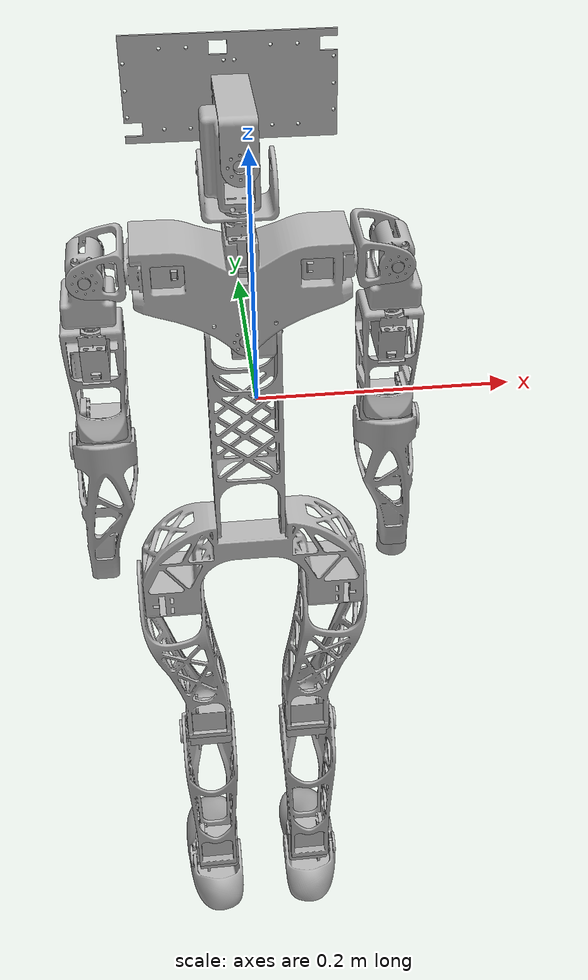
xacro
<?xml version="1.0" ?>
<robot name="jamie" xmlns:xacro="http://www.ros.org/wiki/xacro">

<xacro:include filename="$(find jamie_description)/urdf/materials.xacro" />
<xacro:include filename="$(find jamie_description)/urdf/jamie.trans" />
<xacro:include filename="$(find jamie_description)/urdf/jamie.gazebo" />
<link name="base_link">
  <inertial>
    <origin xyz="-0.011688232223622823 -0.04997378243790669 -0.12088695327313781" rpy="0 0 0"/>
    <mass value="0.8307183918921939"/>
    <inertia ixx="0.000743" iyy="0.00316" izz="0.00283" ixy="0.0" iyz="3.2e-05" ixz="-0.0"/>
  </inertial>
  <visual>
    <origin xyz="0 0 0" rpy="0 0 0"/>
    <geometry>
      <mesh filename="package://jamie_description/meshes/base_link.stl" scale="0.001 0.001 0.001"/>
    </geometry>
    <material name="silver"/>
  </visual>
  <collision>
    <origin xyz="0 0 0" rpy="0 0 0"/>
    <geometry>
      <mesh filename="package://jamie_description/meshes/base_link.stl" scale="0.001 0.001 0.001"/>
    </geometry>
  </collision>
</link>

<link name="right_shoulder_link_1">
  <inertial>
    <origin xyz="0.0006454512302885018 0.020091817000003336 -0.018619059739400937" rpy="0 0 0"/>
    <mass value="0.18884280500199657"/>
    <inertia ixx="7.8e-05" iyy="7.4e-05" izz="5.8e-05" ixy="-0.0" iyz="6e-06" ixz="1e-06"/>
  </inertial>
  <visual>
    <origin xyz="-0.096988 0.053371 -0.133732" rpy="0 0 0"/>
    <geometry>
      <mesh filename="package://jamie_description/meshes/right_shoulder_link_1.stl" scale="0.001 0.001 0.001"/>
    </geometry>
    <material name="silver"/>
  </visual>
  <collision>
    <origin xyz="-0.096988 0.053371 -0.133732" rpy="0 0 0"/>
    <geometry>
      <mesh filename="package://jamie_description/meshes/right_shoulder_link_1.stl" scale="0.001 0.001 0.001"/>
    </geometry>
  </collision>
</link>

<link name="left_shoulder_link_1">
  <inertial>
    <origin xyz="-0.0006456556927465912 0.018983384150954692 -0.019747857797348778" rpy="0 0 0"/>
    <mass value="0.1888429783699795"/>
    <inertia ixx="7.8e-05" iyy="7.5e-05" izz="5.8e-05" ixy="0.0" iyz="5e-06" ixz="-1e-06"/>
  </inertial>
  <visual>
    <origin xyz="0.118164 0.053179 -0.133793" rpy="0 0 0"/>
    <geometry>
      <mesh filename="package://jamie_description/meshes/left_shoulder_link_1.stl" scale="0.001 0.001 0.001"/>
    </geometry>
    <material name="silver"/>
  </visual>
  <collision>
    <origin xyz="0.118164 0.053179 -0.133793" rpy="0 0 0"/>
    <geometry>
      <mesh filename="package://jamie_description/meshes/left_shoulder_link_1.stl" scale="0.001 0.001 0.001"/>
    </geometry>
  </collision>
</link>

<link name="chest_link_1">
  <inertial>
    <origin xyz="-1.1316457350710185e-07 0.02906330717635416 0.04592990519492751" rpy="0 0 0"/>
    <mass value="1.8523759675731215"/>
    <inertia ixx="0.001182" iyy="0.003891" izz="0.004278" ixy="-0.0" iyz="5.8e-05" ixz="-0.0"/>
  </inertial>
  <visual>
    <origin xyz="0.010588 0.057353 -0.084308" rpy="0 0 0"/>
    <geometry>
      <mesh filename="package://jamie_description/meshes/chest_link_1.stl" scale="0.001 0.001 0.001"/>
    </geometry>
    <material name="silver"/>
  </visual>
  <collision>
    <origin xyz="0.010588 0.057353 -0.084308" rpy="0 0 0"/>
    <geometry>
      <mesh filename="package://jamie_description/meshes/chest_link_1.stl" scale="0.001 0.001 0.001"/>
    </geometry>
  </collision>
</link>

<link name="spine_connector_link_1">
  <inertial>
    <origin xyz="-0.016506126643822533 0.00976530186829027 0.010210105914556483" rpy="0 0 0"/>
    <mass value="0.2675520479560331"/>
    <inertia ixx="0.000166" iyy="0.000125" izz="0.000109" ixy="1.4e-05" iyz="-1e-06" ixz="1e-06"/>
  </inertial>
  <visual>
    <origin xyz="-0.011912 0.043103 -0.084308" rpy="0 0 0"/>
    <geometry>
      <mesh filename="package://jamie_description/meshes/spine_connector_link_1.stl" scale="0.001 0.001 0.001"/>
    </geometry>
    <material name="silver"/>
  </visual>
  <collision>
    <origin xyz="-0.011912 0.043103 -0.084308" rpy="0 0 0"/>
    <geometry>
      <mesh filename="package://jamie_description/meshes/spine_connector_link_1.stl" scale="0.001 0.001 0.001"/>
    </geometry>
  </collision>
</link>

<link name="left_upper_leg_link_1">
  <inertial>
    <origin xyz="-0.011849592856818726 0.002829371668791672 -0.08923059026703958" rpy="0 0 0"/>
    <mass value="0.40754083950250325"/>
    <inertia ixx="0.001416" iyy="0.001457" izz="0.000338" ixy="-1.7e-05" iyz="9e-05" ixz="0.00022"/>
  </inertial>
  <visual>
    <origin xyz="0.054988 0.033917 0.144864" rpy="0 0 0"/>
    <geometry>
      <mesh filename="package://jamie_description/meshes/left_upper_leg_link_1.stl" scale="0.001 0.001 0.001"/>
    </geometry>
    <material name="silver"/>
  </visual>
  <collision>
    <origin xyz="0.054988 0.033917 0.144864" rpy="0 0 0"/>
    <geometry>
      <mesh filename="package://jamie_description/meshes/left_upper_leg_link_1.stl" scale="0.001 0.001 0.001"/>
    </geometry>
  </collision>
</link>

<link name="right_upper_leg_link_1">
  <inertial>
    <origin xyz="0.011849783032938543 0.002829371655435887 -0.08923059026985594" rpy="0 0 0"/>
    <mass value="0.40754083973100536"/>
    <inertia ixx="0.001416" iyy="0.001457" izz="0.000338" ixy="1.7e-05" iyz="9e-05" ixz="-0.00022"/>
  </inertial>
  <visual>
    <origin xyz="-0.031612 0.033917 0.144864" rpy="0 0 0"/>
    <geometry>
      <mesh filename="package://jamie_description/meshes/right_upper_leg_link_1.stl" scale="0.001 0.001 0.001"/>
    </geometry>
    <material name="silver"/>
  </visual>
  <collision>
    <origin xyz="-0.031612 0.033917 0.144864" rpy="0 0 0"/>
    <geometry>
      <mesh filename="package://jamie_description/meshes/right_upper_leg_link_1.stl" scale="0.001 0.001 0.001"/>
    </geometry>
  </collision>
</link>

<link name="spine_link_1">
  <inertial>
    <origin xyz="0.027174767465290472 0.0030521600876141017 0.08499963412321193" rpy="0 0 0"/>
    <mass value="0.2851299685332731"/>
    <inertia ixx="0.00083" iyy="0.00095" izz="0.000199" ixy="0.0" iyz="0.0" ixz="-0.0"/>
  </inertial>
  <visual>
    <origin xyz="0.038938 0.043103 0.085692" rpy="0 0 0"/>
    <geometry>
      <mesh filename="package://jamie_description/meshes/spine_link_1.stl" scale="0.001 0.001 0.001"/>
    </geometry>
    <material name="silver"/>
  </visual>
  <collision>
    <origin xyz="0.038938 0.043103 0.085692" rpy="0 0 0"/>
    <geometry>
      <mesh filename="package://jamie_description/meshes/spine_link_1.stl" scale="0.001 0.001 0.001"/>
    </geometry>
  </collision>
</link>

<link name="neck_servo_v1_1">
  <inertial>
    <origin xyz="0.004498756175713993 -0.024681281227217043 -0.00812866225710629" rpy="0 0 0"/>
    <mass value="0.25721902111029343"/>
    <inertia ixx="7.2e-05" iyy="4.5e-05" izz="4.3e-05" ixy="0.0" iyz="2e-06" ixz="0.0"/>
  </inertial>
  <visual>
    <origin xyz="0.015088 0.008497 -0.158408" rpy="0 0 0"/>
    <geometry>
      <mesh filename="package://jamie_description/meshes/neck_servo_v1_1.stl" scale="0.001 0.001 0.001"/>
    </geometry>
    <material name="silver"/>
  </visual>
  <collision>
    <origin xyz="0.015088 0.008497 -0.158408" rpy="0 0 0"/>
    <geometry>
      <mesh filename="package://jamie_description/meshes/neck_servo_v1_1.stl" scale="0.001 0.001 0.001"/>
    </geometry>
  </collision>
</link>

<link name="neck_link_1">
  <inertial>
    <origin xyz="7.906866862536846e-06 0.008823188656805377 0.007600003281340223" rpy="0 0 0"/>
    <mass value="0.09691779368254524"/>
    <inertia ixx="2.3e-05" iyy="5.3e-05" izz="5.3e-05" ixy="0.0" iyz="-1e-06" ixz="-0.0"/>
  </inertial>
  <visual>
    <origin xyz="0.010587 0.04293 -0.174208" rpy="0 0 0"/>
    <geometry>
      <mesh filename="package://jamie_description/meshes/neck_link_1.stl" scale="0.001 0.001 0.001"/>
    </geometry>
    <material name="silver"/>
  </visual>
  <collision>
    <origin xyz="0.010587 0.04293 -0.174208" rpy="0 0 0"/>
    <geometry>
      <mesh filename="package://jamie_description/meshes/neck_link_1.stl" scale="0.001 0.001 0.001"/>
    </geometry>
  </collision>
</link>

<link name="neck_nod_tilt_link_1">
  <inertial>
    <origin xyz="0.016876907608138172 -0.009827444811209469 0.010517825301487094" rpy="0 0 0"/>
    <mass value="0.2884047672762395"/>
    <inertia ixx="0.000176" iyy="0.000137" izz="0.000111" ixy="1.6e-05" iyz="-5e-06" ixz="1e-06"/>
  </inertial>
  <visual>
    <origin xyz="0.033573 0.026911 -0.199208" rpy="0 0 0"/>
    <geometry>
      <mesh filename="package://jamie_description/meshes/neck_nod_tilt_link_1.stl" scale="0.001 0.001 0.001"/>
    </geometry>
    <material name="silver"/>
  </visual>
  <collision>
    <origin xyz="0.033573 0.026911 -0.199208" rpy="0 0 0"/>
    <geometry>
      <mesh filename="package://jamie_description/meshes/neck_nod_tilt_link_1.stl" scale="0.001 0.001 0.001"/>
    </geometry>
  </collision>
</link>

<link name="eye_holder_link_1">
  <inertial>
    <origin xyz="5.747812279516609e-06 0.006610206761225312 -3.658776367987393e-07" rpy="0 0 0"/>
    <mass value="0.16148324488991492"/>
    <inertia ixx="6.3e-05" iyy="0.000324" izz="0.000261" ixy="0.0" iyz="-0.0" ixz="5e-06"/>
  </inertial>
  <visual>
    <origin xyz="0.011055 0.005826 -0.242708" rpy="0 0 0"/>
    <geometry>
      <mesh filename="package://jamie_description/meshes/eye_holder_link_1.stl" scale="0.001 0.001 0.001"/>
    </geometry>
    <material name="silver"/>
  </visual>
  <collision>
    <origin xyz="0.011055 0.005826 -0.242708" rpy="0 0 0"/>
    <geometry>
      <mesh filename="package://jamie_description/meshes/eye_holder_link_1.stl" scale="0.001 0.001 0.001"/>
    </geometry>
  </collision>
</link>

<link name="head_connector_link_1">
  <inertial>
    <origin xyz="-2.018643563084059e-05 -0.023606157816159382 0.0203984707204177" rpy="0 0 0"/>
    <mass value="0.10736239781961848"/>
    <inertia ixx="0.000111" iyy="2e-05" izz="0.000103" ixy="-0.0" iyz="-2e-06" ixz="-0.0"/>
  </inertial>
  <visual>
    <origin xyz="0.011061 0.01293 -0.220208" rpy="0 0 0"/>
    <geometry>
      <mesh filename="package://jamie_description/meshes/head_connector_link_1.stl" scale="0.001 0.001 0.001"/>
    </geometry>
    <material name="silver"/>
  </visual>
  <collision>
    <origin xyz="0.011061 0.01293 -0.220208" rpy="0 0 0"/>
    <geometry>
      <mesh filename="package://jamie_description/meshes/head_connector_link_1.stl" scale="0.001 0.001 0.001"/>
    </geometry>
  </collision>
</link>

<link name="right_shoulder_servo_v1_1">
  <inertial>
    <origin xyz="-0.00812860742899671 -0.02468076372691968 -0.004498749573111471" rpy="0 0 0"/>
    <mass value="0.2572190211102965"/>
    <inertia ixx="4.3e-05" iyy="4.5e-05" izz="7.2e-05" ixy="2e-06" iyz="-0.0" ixz="-0.0"/>
  </inertial>
  <visual>
    <origin xyz="-0.058137 0.006701 -0.13922" rpy="0 0 0"/>
    <geometry>
      <mesh filename="package://jamie_description/meshes/right_shoulder_servo_v1_1.stl" scale="0.001 0.001 0.001"/>
    </geometry>
    <material name="silver"/>
  </visual>
  <collision>
    <origin xyz="-0.058137 0.006701 -0.13922" rpy="0 0 0"/>
    <geometry>
      <mesh filename="package://jamie_description/meshes/right_shoulder_servo_v1_1.stl" scale="0.001 0.001 0.001"/>
    </geometry>
  </collision>
</link>

<link name="right_shoulder_connector_link_1">
  <inertial>
    <origin xyz="0.005752124062318106 0.009618723829080245 0.002431831375562188" rpy="0 0 0"/>
    <mass value="0.08077297877855137"/>
    <inertia ixx="3.5e-05" iyy="1.8e-05" izz="3.8e-05" ixy="0.0" iyz="-1e-06" ixz="1e-06"/>
  </inertial>
  <visual>
    <origin xyz="-0.073937 0.041134 -0.134719" rpy="0 0 0"/>
    <geometry>
      <mesh filename="package://jamie_description/meshes/right_shoulder_connector_link_1.stl" scale="0.001 0.001 0.001"/>
    </geometry>
    <material name="silver"/>
  </visual>
  <collision>
    <origin xyz="-0.073937 0.041134 -0.134719" rpy="0 0 0"/>
    <geometry>
      <mesh filename="package://jamie_description/meshes/right_shoulder_connector_link_1.stl" scale="0.001 0.001 0.001"/>
    </geometry>
  </collision>
</link>

<link name="upper_right_arm_servo_1">
  <inertial>
    <origin xyz="-2.510803230840186e-06 0.011732936046508276 -0.02530054127615601" rpy="0 0 0"/>
    <mass value="0.2572190211102965"/>
    <inertia ixx="7.2e-05" iyy="4.5e-05" izz="4.3e-05" ixy="0.0" iyz="2e-06" ixz="0.0"/>
  </inertial>
  <visual>
    <origin xyz="-0.097021 0.036387 -0.097848" rpy="0 0 0"/>
    <geometry>
      <mesh filename="package://jamie_description/meshes/upper_right_arm_servo_1.stl" scale="0.001 0.001 0.001"/>
    </geometry>
    <material name="silver"/>
  </visual>
  <collision>
    <origin xyz="-0.097021 0.036387 -0.097848" rpy="0 0 0"/>
    <geometry>
      <mesh filename="package://jamie_description/meshes/upper_right_arm_servo_1.stl" scale="0.001 0.001 0.001"/>
    </geometry>
  </collision>
</link>

<link name="right_upper_arm_link_1">
  <inertial>
    <origin xyz="-0.004123350154138353 -0.017587352029927915 -0.02655071795868074" rpy="0 0 0"/>
    <mass value="0.255754845328822"/>
    <inertia ixx="0.000327" iyy="0.000305" izz="0.000135" ixy="-0.0" iyz="-1.2e-05" ixz="1e-06"/>
  </inertial>
  <visual>
    <origin xyz="-0.10152 0.000671 -0.08255" rpy="0 0 0"/>
    <geometry>
      <mesh filename="package://jamie_description/meshes/right_upper_arm_link_1.stl" scale="0.001 0.001 0.001"/>
    </geometry>
    <material name="silver"/>
  </visual>
  <collision>
    <origin xyz="-0.10152 0.000671 -0.08255" rpy="0 0 0"/>
    <geometry>
      <mesh filename="package://jamie_description/meshes/right_upper_arm_link_1.stl" scale="0.001 0.001 0.001"/>
    </geometry>
  </collision>
</link>

<link name="right_forearm_servo_1">
  <inertial>
    <origin xyz="-0.010378123114656357 0.006383939661467209 -0.024261954643891036" rpy="0 0 0"/>
    <mass value="0.2572190211102965"/>
    <inertia ixx="4.3e-05" iyy="7.1e-05" izz="4.5e-05" ixy="-0.0" iyz="2e-06" ixz="2e-06"/>
  </inertial>
  <visual>
    <origin xyz="-0.108435 0.023995 -0.019347" rpy="0 0 0"/>
    <geometry>
      <mesh filename="package://jamie_description/meshes/right_forearm_servo_1.stl" scale="0.001 0.001 0.001"/>
    </geometry>
    <material name="silver"/>
  </visual>
  <collision>
    <origin xyz="-0.108435 0.023995 -0.019347" rpy="0 0 0"/>
    <geometry>
      <mesh filename="package://jamie_description/meshes/right_forearm_servo_1.stl" scale="0.001 0.001 0.001"/>
    </geometry>
  </collision>
</link>

<link name="forearm_right_v1_1">
  <inertial>
    <origin xyz="-0.019394005129541883 -0.006187519065597221 -0.04912253646367075" rpy="0 0 0"/>
    <mass value="0.17753961220642203"/>
    <inertia ixx="0.000376" iyy="0.000381" izz="7.2e-05" ixy="-8e-06" iyz="6.1e-05" ixz="3.4e-05"/>
  </inertial>
  <visual>
    <origin xyz="-0.121985 0.016858 0.014638" rpy="0 0 0"/>
    <geometry>
      <mesh filename="package://jamie_description/meshes/forearm_right_v1_1.stl" scale="0.001 0.001 0.001"/>
    </geometry>
    <material name="silver"/>
  </visual>
  <collision>
    <origin xyz="-0.121985 0.016858 0.014638" rpy="0 0 0"/>
    <geometry>
      <mesh filename="package://jamie_description/meshes/forearm_right_v1_1.stl" scale="0.001 0.001 0.001"/>
    </geometry>
  </collision>
</link>

<link name="left_shoulder_servo_1">
  <inertial>
    <origin xyz="0.008128392770885493 0.023799719432171376 0.00474899590886993" rpy="0 0 0"/>
    <mass value="0.2572190211102965"/>
    <inertia ixx="4.3e-05" iyy="4.5e-05" izz="7.2e-05" ixy="-2e-06" iyz="0.0" ixz="-0.0"/>
  </inertial>
  <visual>
    <origin xyz="0.079313 0.054953 -0.12932" rpy="0 0 0"/>
    <geometry>
      <mesh filename="package://jamie_description/meshes/left_shoulder_servo_1.stl" scale="0.001 0.001 0.001"/>
    </geometry>
    <material name="silver"/>
  </visual>
  <collision>
    <origin xyz="0.079313 0.054953 -0.12932" rpy="0 0 0"/>
    <geometry>
      <mesh filename="package://jamie_description/meshes/left_shoulder_servo_1.stl" scale="0.001 0.001 0.001"/>
    </geometry>
  </collision>
</link>

<link name="left_shoulder_connector_link_1">
  <inertial>
    <origin xyz="-0.005753141750530072 0.009742595834557 0.0018734256404009109" rpy="0 0 0"/>
    <mass value="0.08076633902558729"/>
    <inertia ixx="3.5e-05" iyy="1.8e-05" izz="3.8e-05" ixy="-0.0" iyz="-0.0" ixz="-1e-06"/>
  </inertial>
  <visual>
    <origin xyz="0.095113 0.040905 -0.134072" rpy="0 0 0"/>
    <geometry>
      <mesh filename="package://jamie_description/meshes/left_shoulder_connector_link_1.stl" scale="0.001 0.001 0.001"/>
    </geometry>
    <material name="silver"/>
  </visual>
  <collision>
    <origin xyz="0.095113 0.040905 -0.134072" rpy="0 0 0"/>
    <geometry>
      <mesh filename="package://jamie_description/meshes/left_shoulder_connector_link_1.stl" scale="0.001 0.001 0.001"/>
    </geometry>
  </collision>
</link>

<link name="upper_left_arm_servo_1">
  <inertial>
    <origin xyz="-2.877074061907736e-06 0.010252901008719402 -0.0259352898717696" rpy="0 0 0"/>
    <mass value="0.2572190211102965"/>
    <inertia ixx="7.2e-05" iyy="4.5e-05" izz="4.3e-05" ixy="0.0" iyz="2e-06" ixz="0.0"/>
  </inertial>
  <visual>
    <origin xyz="0.118197 0.038295 -0.096988" rpy="0 0 0"/>
    <geometry>
      <mesh filename="package://jamie_description/meshes/upper_left_arm_servo_1.stl" scale="0.001 0.001 0.001"/>
    </geometry>
    <material name="silver"/>
  </visual>
  <collision>
    <origin xyz="0.118197 0.038295 -0.096988" rpy="0 0 0"/>
    <geometry>
      <mesh filename="package://jamie_description/meshes/upper_left_arm_servo_1.stl" scale="0.001 0.001 0.001"/>
    </geometry>
  </collision>
</link>

<link name="left_forearm_servo_1">
  <inertial>
    <origin xyz="0.010377989755389824 0.00497564306234646 -0.024590058711966623" rpy="0 0 0"/>
    <mass value="0.2572190211102965"/>
    <inertia ixx="4.3e-05" iyy="7.2e-05" izz="4.5e-05" ixy="0.0" iyz="1e-06" ixz="-2e-06"/>
  </inertial>
  <visual>
    <origin xyz="0.129614 0.030456 -0.017903" rpy="0 0 0"/>
    <geometry>
      <mesh filename="package://jamie_description/meshes/left_forearm_servo_1.stl" scale="0.001 0.001 0.001"/>
    </geometry>
    <material name="silver"/>
  </visual>
  <collision>
    <origin xyz="0.129614 0.030456 -0.017903" rpy="0 0 0"/>
    <geometry>
      <mesh filename="package://jamie_description/meshes/left_forearm_servo_1.stl" scale="0.001 0.001 0.001"/>
    </geometry>
  </collision>
</link>

<link name="forearm_left_v1_1">
  <inertial>
    <origin xyz="0.01939387800689696 -0.009012982086464168 -0.048683876996780125" rpy="0 0 0"/>
    <mass value="0.17753962618878713"/>
    <inertia ixx="0.000376" iyy="0.000387" izz="6.6e-05" ixy="6e-06" iyz="4.2e-05" ixz="-3.5e-05"/>
  </inertial>
  <visual>
    <origin xyz="0.143164 0.025295 0.016437" rpy="0 0 0"/>
    <geometry>
      <mesh filename="package://jamie_description/meshes/forearm_left_v1_1.stl" scale="0.001 0.001 0.001"/>
    </geometry>
    <material name="silver"/>
  </visual>
  <collision>
    <origin xyz="0.143164 0.025295 0.016437" rpy="0 0 0"/>
    <geometry>
      <mesh filename="package://jamie_description/meshes/forearm_left_v1_1.stl" scale="0.001 0.001 0.001"/>
    </geometry>
  </collision>
</link>

<link name="left_upper_arm_link_1">
  <inertial>
    <origin xyz="0.004123243749002498 -0.019090350416492475 -0.025492083030674344" rpy="0 0 0"/>
    <mass value="0.2557548453425491"/>
    <inertia ixx="0.000327" iyy="0.000303" izz="0.000137" ixy="-0.0" iyz="-2.1e-05" ixz="-1e-06"/>
  </inertial>
  <visual>
    <origin xyz="0.122699 0.003522 -0.079655" rpy="0 0 0"/>
    <geometry>
      <mesh filename="package://jamie_description/meshes/left_upper_arm_link_1.stl" scale="0.001 0.001 0.001"/>
    </geometry>
    <material name="silver"/>
  </visual>
  <collision>
    <origin xyz="0.122699 0.003522 -0.079655" rpy="0 0 0"/>
    <geometry>
      <mesh filename="package://jamie_description/meshes/left_upper_arm_link_1.stl" scale="0.001 0.001 0.001"/>
    </geometry>
  </collision>
</link>

<link name="left_knee_servo_1">
  <inertial>
    <origin xyz="0.01037789378086855 -0.004498624814330811 -0.024681265256192964" rpy="0 0 0"/>
    <mass value="0.2572190211102965"/>
    <inertia ixx="4.3e-05" iyy="7.2e-05" izz="4.5e-05" ixy="0.0" iyz="-0.0" ixz="-2e-06"/>
  </inertial>
  <visual>
    <origin xyz="0.066624 0.029397 0.292205" rpy="0 0 0"/>
    <geometry>
      <mesh filename="package://jamie_description/meshes/left_knee_servo_1.stl" scale="0.001 0.001 0.001"/>
    </geometry>
    <material name="silver"/>
  </visual>
  <collision>
    <origin xyz="0.066624 0.029397 0.292205" rpy="0 0 0"/>
    <geometry>
      <mesh filename="package://jamie_description/meshes/left_knee_servo_1.stl" scale="0.001 0.001 0.001"/>
    </geometry>
  </collision>
</link>

<link name="left_lower_leg_link_1">
  <inertial>
    <origin xyz="0.023515277987629278 0.0045635213235817595 -0.07198270681693797" rpy="0 0 0"/>
    <mass value="0.3617681277031548"/>
    <inertia ixx="0.001335" iyy="0.00132" izz="0.000226" ixy="0.0" iyz="-6.8e-05" ixz="-6e-06"/>
  </inertial>
  <visual>
    <origin xyz="0.080174 0.033898 0.326638" rpy="0 0 0"/>
    <geometry>
      <mesh filename="package://jamie_description/meshes/left_lower_leg_link_1.stl" scale="0.001 0.001 0.001"/>
    </geometry>
    <material name="silver"/>
  </visual>
  <collision>
    <origin xyz="0.080174 0.033898 0.326638" rpy="0 0 0"/>
    <geometry>
      <mesh filename="package://jamie_description/meshes/left_lower_leg_link_1.stl" scale="0.001 0.001 0.001"/>
    </geometry>
  </collision>
</link>

<link name="left_ankle_servo_1">
  <inertial>
    <origin xyz="0.010377893780845047 -0.00449908416490016 -0.024681407818125167" rpy="0 0 0"/>
    <mass value="0.2572190211102965"/>
    <inertia ixx="4.3e-05" iyy="7.2e-05" izz="4.5e-05" ixy="0.0" iyz="-0.0" ixz="-2e-06"/>
  </inertial>
  <visual>
    <origin xyz="0.067674 0.028298 0.470038" rpy="0 0 0"/>
    <geometry>
      <mesh filename="package://jamie_description/meshes/left_ankle_servo_1.stl" scale="0.001 0.001 0.001"/>
    </geometry>
    <material name="silver"/>
  </visual>
  <collision>
    <origin xyz="0.067674 0.028298 0.470038" rpy="0 0 0"/>
    <geometry>
      <mesh filename="package://jamie_description/meshes/left_ankle_servo_1.stl" scale="0.001 0.001 0.001"/>
    </geometry>
  </collision>
</link>

<link name="left_foot_link_1">
  <inertial>
    <origin xyz="0.021983260519152656 0.026383158236471093 -0.0229144258498577" rpy="0 0 0"/>
    <mass value="0.047635684999489704"/>
    <inertia ixx="8.3e-05" iyy="1.9e-05" izz="9e-05" ixy="3e-06" iyz="4e-06" ixz="-0.0"/>
  </inertial>
  <visual>
    <origin xyz="0.081224 0.0328 0.504471" rpy="0 0 0"/>
    <geometry>
      <mesh filename="package://jamie_description/meshes/left_foot_link_1.stl" scale="0.001 0.001 0.001"/>
    </geometry>
    <material name="silver"/>
  </visual>
  <collision>
    <origin xyz="0.081224 0.0328 0.504471" rpy="0 0 0"/>
    <geometry>
      <mesh filename="package://jamie_description/meshes/left_foot_link_1.stl" scale="0.001 0.001 0.001"/>
    </geometry>
  </collision>
</link>

<link name="right_knee_servo_1">
  <inertial>
    <origin xyz="-0.010278358850363885 -0.004500879332427404 -0.024681265256203677" rpy="0 0 0"/>
    <mass value="0.2572190211102965"/>
    <inertia ixx="4.3e-05" iyy="7.2e-05" izz="4.5e-05" ixy="0.0" iyz="0.0" ixz="2e-06"/>
  </inertial>
  <visual>
    <origin xyz="-0.043248 0.029397 0.292205" rpy="0 0 0"/>
    <geometry>
      <mesh filename="package://jamie_description/meshes/right_knee_servo_1.stl" scale="0.001 0.001 0.001"/>
    </geometry>
    <material name="silver"/>
  </visual>
  <collision>
    <origin xyz="-0.043248 0.029397 0.292205" rpy="0 0 0"/>
    <geometry>
      <mesh filename="package://jamie_description/meshes/right_knee_servo_1.stl" scale="0.001 0.001 0.001"/>
    </geometry>
  </collision>
</link>

<link name="right_lower_leg_link_1">
  <inertial>
    <origin xyz="-0.023515842298494176 0.004563212335493196 -0.07198302999537853" rpy="0 0 0"/>
    <mass value="0.3617641931033871"/>
    <inertia ixx="0.001335" iyy="0.00132" izz="0.000226" ixy="-0.0" iyz="-6.8e-05" ixz="6e-06"/>
  </inertial>
  <visual>
    <origin xyz="-0.056898 0.033895 0.326638" rpy="0 0 0"/>
    <geometry>
      <mesh filename="package://jamie_description/meshes/right_lower_leg_link_1.stl" scale="0.001 0.001 0.001"/>
    </geometry>
    <material name="silver"/>
  </visual>
  <collision>
    <origin xyz="-0.056898 0.033895 0.326638" rpy="0 0 0"/>
    <geometry>
      <mesh filename="package://jamie_description/meshes/right_lower_leg_link_1.stl" scale="0.001 0.001 0.001"/>
    </geometry>
  </collision>
</link>

<link name="right_ankle_servo_1">
  <inertial>
    <origin xyz="-0.010378358850152168 0.004498580018135266 -0.024681407818113066" rpy="0 0 0"/>
    <mass value="0.2572190211102965"/>
    <inertia ixx="4.3e-05" iyy="7.2e-05" izz="4.5e-05" ixy="0.0" iyz="0.0" ixz="2e-06"/>
  </inertial>
  <visual>
    <origin xyz="-0.044398 0.037295 0.470038" rpy="0 0 0"/>
    <geometry>
      <mesh filename="package://jamie_description/meshes/right_ankle_servo_1.stl" scale="0.001 0.001 0.001"/>
    </geometry>
    <material name="silver"/>
  </visual>
  <collision>
    <origin xyz="-0.044398 0.037295 0.470038" rpy="0 0 0"/>
    <geometry>
      <mesh filename="package://jamie_description/meshes/right_ankle_servo_1.stl" scale="0.001 0.001 0.001"/>
    </geometry>
  </collision>
</link>

<link name="right_foot_link_1">
  <inertial>
    <origin xyz="-0.021983693931272683 0.02638300421014424 -0.022914426539675126" rpy="0 0 0"/>
    <mass value="0.04763567628033751"/>
    <inertia ixx="8.3e-05" iyy="1.9e-05" izz="9e-05" ixy="-3e-06" iyz="4e-06" ixz="0.0"/>
  </inertial>
  <visual>
    <origin xyz="-0.057948 0.032794 0.504471" rpy="0 0 0"/>
    <geometry>
      <mesh filename="package://jamie_description/meshes/right_foot_link_1.stl" scale="0.001 0.001 0.001"/>
    </geometry>
    <material name="silver"/>
  </visual>
  <collision>
    <origin xyz="-0.057948 0.032794 0.504471" rpy="0 0 0"/>
    <geometry>
      <mesh filename="package://jamie_description/meshes/right_foot_link_1.stl" scale="0.001 0.001 0.001"/>
    </geometry>
  </collision>
</link>

<link name="right_hand_1">
  <inertial>
    <origin xyz="-0.08648482679225791 -0.12490687861747213 -0.133081495861343" rpy="0 0 0"/>
    <mass value="0.06220245659592166"/>
    <inertia ixx="4e-06" iyy="4e-06" izz="5e-06" ixy="-0.0" iyz="-0.0" ixz="-0.0"/>
  </inertial>
  <visual>
    <origin xyz="-0.19647 -0.116899 0.009254" rpy="0 0 0"/>
    <geometry>
      <mesh filename="package://jamie_description/meshes/right_hand_1.stl" scale="0.001 0.001 0.001"/>
    </geometry>
    <material name="silver"/>
  </visual>
  <collision>
    <origin xyz="-0.19647 -0.116899 0.009254" rpy="0 0 0"/>
    <geometry>
      <mesh filename="package://jamie_description/meshes/right_hand_1.stl" scale="0.001 0.001 0.001"/>
    </geometry>
  </collision>
</link>

<joint name="Revolute 4" type="revolute">
  <origin xyz="0.023051 -0.012237 -0.000987" rpy="0 0 0"/>
  <parent link="right_shoulder_connector_link_1"/>
  <child link="right_shoulder_link_1"/>
  <axis xyz="0.0 0.997036 0.076933"/>
  <limit upper="0.436332" lower="-2.70526" effort="100" velocity="100"/>
</joint>

<joint name="Revolute 8" type="revolute">
  <origin xyz="-0.023051 -0.012274 -0.000279" rpy="0 0 0"/>
  <parent link="left_shoulder_connector_link_1"/>
  <child link="left_shoulder_link_1"/>
  <axis xyz="0.0 0.999815 0.019247"/>
  <limit upper="2.70526" lower="-0.436332" effort="100" velocity="100"/>
</joint>

<joint name="Revolute 11" type="revolute">
  <origin xyz="-0.0225 -0.01425 0.0" rpy="0 0 0"/>
  <parent link="spine_connector_link_1"/>
  <child link="chest_link_1"/>
  <axis xyz="0.0 1.0 0.0"/>
  <limit upper="0.698132" lower="-0.698132" effort="100" velocity="100"/>
</joint>

<joint name="Revolute 12" type="revolute">
  <origin xyz="0.05085 0.0 0.17" rpy="0 0 0"/>
  <parent link="spine_link_1"/>
  <child link="spine_connector_link_1"/>
  <axis xyz="1.0 -0.0 -0.0"/>
  <limit upper="0.698132" lower="-0.698132" effort="100" velocity="100"/>
</joint>

<joint name="Revolute 14" type="revolute">
  <origin xyz="-0.054988 -0.033917 -0.144864" rpy="0 0 0"/>
  <parent link="base_link"/>
  <child link="left_upper_leg_link_1"/>
  <axis xyz="-1.0 0.0 -0.0"/>
  <limit upper="0.0" lower="-1.396263" effort="100" velocity="100"/>
</joint>

<joint name="Revolute 17" type="revolute">
  <origin xyz="0.031612 -0.033917 -0.144864" rpy="0 0 0"/>
  <parent link="base_link"/>
  <child link="right_upper_leg_link_1"/>
  <axis xyz="-1.0 0.0 -0.0"/>
  <limit upper="0.0" lower="-1.396263" effort="100" velocity="100"/>
</joint>

<joint name="Revolute 1" type="fixed">
  <origin xyz="-0.038938 -0.043103 -0.085692" rpy="0 0 0"/>
  <parent link="base_link"/>
  <child link="spine_link_1"/>
</joint>

<joint name="Rigid 1" type="fixed">
  <origin xyz="-0.0045 0.048856 0.0741" rpy="0 0 0"/>
  <parent link="chest_link_1"/>
  <child link="neck_servo_v1_1"/>
</joint>

<joint name="Revolute 6" type="revolute">
  <origin xyz="0.004501 -0.034433 0.0158" rpy="0 0 0"/>
  <parent link="neck_servo_v1_1"/>
  <child link="neck_link_1"/>
  <axis xyz="-0.0 0.0 -1.0"/>
  <limit upper="1.570796" lower="-1.570796" effort="100" velocity="100"/>
</joint>

<joint name="Revolute 7" type="revolute">
  <origin xyz="-0.022986 0.016019 0.025" rpy="0 0 0"/>
  <parent link="neck_link_1"/>
  <child link="neck_nod_tilt_link_1"/>
  <axis xyz="-1.0 0.000856 0.0"/>
  <limit upper="0.349066" lower="-0.349066" effort="100" velocity="100"/>
</joint>

<joint name="Rigid 2" type="fixed">
  <origin xyz="6e-06 0.007104 0.0225" rpy="0 0 0"/>
  <parent link="head_connector_link_1"/>
  <child link="eye_holder_link_1"/>
</joint>

<joint name="Revolute 13" type="revolute">
  <origin xyz="0.022512 0.013981 0.021" rpy="0 0 0"/>
  <parent link="neck_nod_tilt_link_1"/>
  <child link="head_connector_link_1"/>
  <axis xyz="-0.000856 -1.0 0.0"/>
  <limit upper="1.570796" lower="-1.570796" effort="100" velocity="100"/>
</joint>

<joint name="Rigid 3" type="fixed">
  <origin xyz="0.068725 0.050652 0.054912" rpy="0 0 0"/>
  <parent link="chest_link_1"/>
  <child link="right_shoulder_servo_v1_1"/>
</joint>

<joint name="Revolute 3" type="revolute">
  <origin xyz="0.0158 -0.034433 -0.004501" rpy="0 0 0"/>
  <parent link="right_shoulder_servo_v1_1"/>
  <child link="right_shoulder_connector_link_1"/>
  <axis xyz="-1.0 0.0 0.0"/>
  <limit upper="0.0" lower="-3.141593" effort="100" velocity="100"/>
</joint>

<joint name="Revolute 21" type="revolute">
  <origin xyz="3.3e-05 0.016984 -0.035884" rpy="0 0 0"/>
  <parent link="right_shoulder_link_1"/>
  <child link="upper_right_arm_servo_1"/>
  <axis xyz="-0.0 0.076933 -0.997036"/>
  <limit upper="1.570796" lower="-1.570796" effort="100" velocity="100"/>
</joint>

<joint name="Rigid 4" type="fixed">
  <origin xyz="0.004499 0.035716 -0.015298" rpy="0 0 0"/>
  <parent link="upper_right_arm_servo_1"/>
  <child link="right_upper_arm_link_1"/>
</joint>

<joint name="Rigid 5" type="fixed">
  <origin xyz="0.006915 -0.023324 -0.063203" rpy="0 0 0"/>
  <parent link="right_upper_arm_link_1"/>
  <child link="right_forearm_servo_1"/>
</joint>

<joint name="Revolute 22" type="revolute">
  <origin xyz="0.01355 0.007137 -0.033985" rpy="0 0 0"/>
  <parent link="right_forearm_servo_1"/>
  <child link="forearm_right_v1_1"/>
  <axis xyz="-1.0 0.0 0.0"/>
  <limit upper="0.0" lower="-2.530727" effort="100" velocity="100"/>
</joint>

<joint name="Rigid 6" type="fixed">
  <origin xyz="-0.068725 0.0024 0.045012" rpy="0 0 0"/>
  <parent link="chest_link_1"/>
  <child link="left_shoulder_servo_1"/>
</joint>

<joint name="Revolute 20" type="revolute">
  <origin xyz="-0.0158 0.014048 0.004752" rpy="0 0 0"/>
  <parent link="left_shoulder_servo_1"/>
  <child link="left_shoulder_connector_link_1"/>
  <axis xyz="1.0 -0.0 -0.0"/>
  <limit upper="3.141593" lower="0.0" effort="100" velocity="100"/>
</joint>

<joint name="Revolute 9" type="revolute">
  <origin xyz="-3.3e-05 0.014884 -0.036805" rpy="0 0 0"/>
  <parent link="left_shoulder_link_1"/>
  <child link="upper_left_arm_servo_1"/>
  <axis xyz="-0.0 -0.019247 0.999815"/>
  <limit upper="1.570796" lower="-1.570796" effort="100" velocity="100"/>
</joint>

<joint name="Rigid 8" type="fixed">
  <origin xyz="-0.006915 -0.026934 -0.061752" rpy="0 0 0"/>
  <parent link="left_upper_arm_link_1"/>
  <child link="left_forearm_servo_1"/>
</joint>

<joint name="Revolute 2" type="revolute">
  <origin xyz="-0.01355 0.005161 -0.03434" rpy="0 0 0"/>
  <parent link="left_forearm_servo_1"/>
  <child link="forearm_left_v1_1"/>
  <axis xyz="1.0 -0.0 0.0"/>
  <limit upper="2.530727" lower="0.0" effort="100" velocity="100"/>
</joint>

<joint name="Rigid 7" type="fixed">
  <origin xyz="-0.004502 0.034773 -0.017333" rpy="0 0 0"/>
  <parent link="upper_left_arm_servo_1"/>
  <child link="left_upper_arm_link_1"/>
</joint>

<joint name="Rigid 9" type="fixed">
  <origin xyz="-0.011636 0.00452 -0.147341" rpy="0 0 0"/>
  <parent link="left_upper_leg_link_1"/>
  <child link="left_knee_servo_1"/>
</joint>

<joint name="Revolute 5" type="revolute">
  <origin xyz="-0.01355 -0.004501 -0.034433" rpy="0 0 0"/>
  <parent link="left_knee_servo_1"/>
  <child link="left_lower_leg_link_1"/>
  <axis xyz="1.0 -0.0 -0.0"/>
  <limit upper="0.0" lower="-1.658063" effort="100" velocity="100"/>
</joint>

<joint name="Rigid 10" type="fixed">
  <origin xyz="0.0125 0.0056 -0.1434" rpy="0 0 0"/>
  <parent link="left_lower_leg_link_1"/>
  <child link="left_ankle_servo_1"/>
</joint>

<joint name="Revolute 10" type="revolute">
  <origin xyz="-0.01355 -0.004502 -0.034433" rpy="0 0 0"/>
  <parent link="left_ankle_servo_1"/>
  <child link="left_foot_link_1"/>
  <axis xyz="1.0 -0.0 -0.0"/>
  <limit upper="0.785398" lower="-0.523599" effort="100" velocity="100"/>
</joint>

<joint name="Rigid 11" type="fixed">
  <origin xyz="0.011636 0.00452 -0.147341" rpy="0 0 0"/>
  <parent link="right_upper_leg_link_1"/>
  <child link="right_knee_servo_1"/>
</joint>

<joint name="Revolute 18" type="revolute">
  <origin xyz="0.01365 -0.004498 -0.034433" rpy="0 0 0"/>
  <parent link="right_knee_servo_1"/>
  <child link="right_lower_leg_link_1"/>
  <axis xyz="-1.0 0.0 0.0"/>
  <limit upper="1.658063" lower="0.0" effort="100" velocity="100"/>
</joint>

<joint name="Rigid 12" type="fixed">
  <origin xyz="-0.0125 -0.0034 -0.1434" rpy="0 0 0"/>
  <parent link="right_lower_leg_link_1"/>
  <child link="right_ankle_servo_1"/>
</joint>

<joint name="Revolute 19" type="revolute">
  <origin xyz="0.01355 0.004501 -0.034433" rpy="0 0 0"/>
  <parent link="right_ankle_servo_1"/>
  <child link="right_foot_link_1"/>
  <axis xyz="-1.0 0.0 -0.0"/>
  <limit upper="0.785398" lower="-0.523599" effort="100" velocity="100"/>
</joint>

<joint name="Rigid 95" type="fixed">
  <origin xyz="0.074485 0.133757 0.005384" rpy="0 0 0"/>
  <parent link="forearm_right_v1_1"/>
  <child link="right_hand_1"/>
</joint>

</robot>

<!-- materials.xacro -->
<robot name="jamie" xmlns:xacro="http://www.ros.org/wiki/xacro" >

<material name="silver">
  <color rgba="0.700 0.700 0.700 1.000"/>
</material>

</robot>

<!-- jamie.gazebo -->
<robot name="jamie" xmlns:xacro="http://www.ros.org/wiki/xacro" >

<xacro:property name="body_color" value="Gazebo/Silver" />

<gazebo>
  <plugin name="control" filename="libgazebo_ros_control.so"/>
</gazebo>
<gazebo reference="base_link">
  <material>${body_color}</material>
  <mu1>0.2</mu1>
  <mu2>0.2</mu2>
  <selfCollide>true</selfCollide>
  <gravity>true</gravity>
</gazebo>

<gazebo reference="right_shoulder_link_1">
  <material>${body_color}</material>
  <mu1>0.2</mu1>
  <mu2>0.2</mu2>
  <selfCollide>true</selfCollide>
</gazebo>

<gazebo reference="left_shoulder_link_1">
  <material>${body_color}</material>
  <mu1>0.2</mu1>
  <mu2>0.2</mu2>
  <selfCollide>true</selfCollide>
</gazebo>

<gazebo reference="chest_link_1">
  <material>${body_color}</material>
  <mu1>0.2</mu1>
  <mu2>0.2</mu2>
  <selfCollide>true</selfCollide>
</gazebo>

<gazebo reference="spine_connector_link_1">
  <material>${body_color}</material>
  <mu1>0.2</mu1>
  <mu2>0.2</mu2>
  <selfCollide>true</selfCollide>
</gazebo>

<gazebo reference="left_upper_leg_link_1">
  <material>${body_color}</material>
  <mu1>0.2</mu1>
  <mu2>0.2</mu2>
  <selfCollide>true</selfCollide>
</gazebo>

<gazebo reference="right_upper_leg_link_1">
  <material>${body_color}</material>
  <mu1>0.2</mu1>
  <mu2>0.2</mu2>
  <selfCollide>true</selfCollide>
</gazebo>

<gazebo reference="spine_link_1">
  <material>${body_color}</material>
  <mu1>0.2</mu1>
  <mu2>0.2</mu2>
  <selfCollide>true</selfCollide>
</gazebo>

<gazebo reference="neck_servo_v1_1">
  <material>${body_color}</material>
  <mu1>0.2</mu1>
  <mu2>0.2</mu2>
  <selfCollide>true</selfCollide>
</gazebo>

<gazebo reference="neck_link_1">
  <material>${body_color}</material>
  <mu1>0.2</mu1>
  <mu2>0.2</mu2>
  <selfCollide>true</selfCollide>
</gazebo>

<gazebo reference="neck_nod_tilt_link_1">
  <material>${body_color}</material>
  <mu1>0.2</mu1>
  <mu2>0.2</mu2>
  <selfCollide>true</selfCollide>
</gazebo>

<gazebo reference="eye_holder_link_1">
  <material>${body_color}</material>
  <mu1>0.2</mu1>
  <mu2>0.2</mu2>
  <selfCollide>true</selfCollide>
</gazebo>

<gazebo reference="head_connector_link_1">
  <material>${body_color}</material>
  <mu1>0.2</mu1>
  <mu2>0.2</mu2>
  <selfCollide>true</selfCollide>
</gazebo>

<gazebo reference="right_shoulder_servo_v1_1">
  <material>${body_color}</material>
  <mu1>0.2</mu1>
  <mu2>0.2</mu2>
  <selfCollide>true</selfCollide>
</gazebo>

<gazebo reference="right_shoulder_connector_link_1">
  <material>${body_color}</material>
  <mu1>0.2</mu1>
  <mu2>0.2</mu2>
  <selfCollide>true</selfCollide>
</gazebo>

<gazebo reference="upper_right_arm_servo_1">
  <material>${body_color}</material>
  <mu1>0.2</mu1>
  <mu2>0.2</mu2>
  <selfCollide>true</selfCollide>
</gazebo>

<gazebo reference="right_upper_arm_link_1">
  <material>${body_color}</material>
  <mu1>0.2</mu1>
  <mu2>0.2</mu2>
  <selfCollide>true</selfCollide>
</gazebo>

<gazebo reference="right_forearm_servo_1">
  <material>${body_color}</material>
  <mu1>0.2</mu1>
  <mu2>0.2</mu2>
  <selfCollide>true</selfCollide>
</gazebo>

<gazebo reference="forearm_right_v1_1">
  <material>${body_color}</material>
  <mu1>0.2</mu1>
  <mu2>0.2</mu2>
  <selfCollide>true</selfCollide>
</gazebo>

<gazebo reference="left_shoulder_servo_1">
  <material>${body_color}</material>
  <mu1>0.2</mu1>
  <mu2>0.2</mu2>
  <selfCollide>true</selfCollide>
</gazebo>

<gazebo reference="left_shoulder_connector_link_1">
  <material>${body_color}</material>
  <mu1>0.2</mu1>
  <mu2>0.2</mu2>
  <selfCollide>true</selfCollide>
</gazebo>

<gazebo reference="upper_left_arm_servo_1">
  <material>${body_color}</material>
  <mu1>0.2</mu1>
  <mu2>0.2</mu2>
  <selfCollide>true</selfCollide>
</gazebo>

<gazebo reference="left_forearm_servo_1">
  <material>${body_color}</material>
  <mu1>0.2</mu1>
  <mu2>0.2</mu2>
  <selfCollide>true</selfCollide>
</gazebo>

<gazebo reference="forearm_left_v1_1">
  <material>${body_color}</material>
  <mu1>0.2</mu1>
  <mu2>0.2</mu2>
  <selfCollide>true</selfCollide>
</gazebo>

<gazebo reference="left_upper_arm_link_1">
  <material>${body_color}</material>
  <mu1>0.2</mu1>
  <mu2>0.2</mu2>
  <selfCollide>true</selfCollide>
</gazebo>

<gazebo reference="left_knee_servo_1">
  <material>${body_color}</material>
  <mu1>0.2</mu1>
  <mu2>0.2</mu2>
  <selfCollide>true</selfCollide>
</gazebo>

<gazebo reference="left_lower_leg_link_1">
  <material>${body_color}</material>
  <mu1>0.2</mu1>
  <mu2>0.2</mu2>
  <selfCollide>true</selfCollide>
</gazebo>

<gazebo reference="left_ankle_servo_1">
  <material>${body_color}</material>
  <mu1>0.2</mu1>
  <mu2>0.2</mu2>
  <selfCollide>true</selfCollide>
</gazebo>

<gazebo reference="left_foot_link_1">
  <material>${body_color}</material>
  <mu1>0.2</mu1>
  <mu2>0.2</mu2>
  <selfCollide>true</selfCollide>
</gazebo>

<gazebo reference="right_knee_servo_1">
  <material>${body_color}</material>
  <mu1>0.2</mu1>
  <mu2>0.2</mu2>
  <selfCollide>true</selfCollide>
</gazebo>

<gazebo reference="right_lower_leg_link_1">
  <material>${body_color}</material>
  <mu1>0.2</mu1>
  <mu2>0.2</mu2>
  <selfCollide>true</selfCollide>
</gazebo>

<gazebo reference="right_ankle_servo_1">
  <material>${body_color}</material>
  <mu1>0.2</mu1>
  <mu2>0.2</mu2>
  <selfCollide>true</selfCollide>
</gazebo>

<gazebo reference="right_foot_link_1">
  <material>${body_color}</material>
  <mu1>0.2</mu1>
  <mu2>0.2</mu2>
  <selfCollide>true</selfCollide>
</gazebo>

<gazebo reference="right_hand_1">
  <material>${body_color}</material>
  <mu1>0.2</mu1>
  <mu2>0.2</mu2>
  <selfCollide>true</selfCollide>
</gazebo>

</robot>
